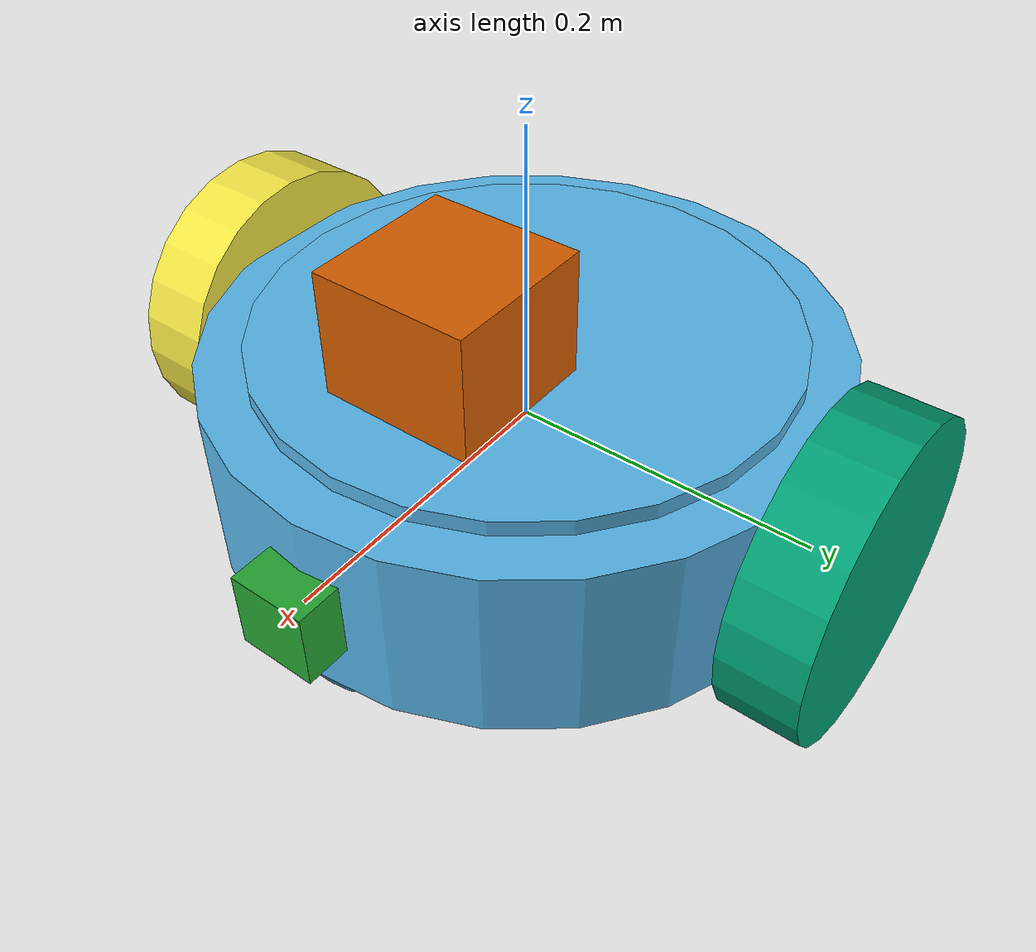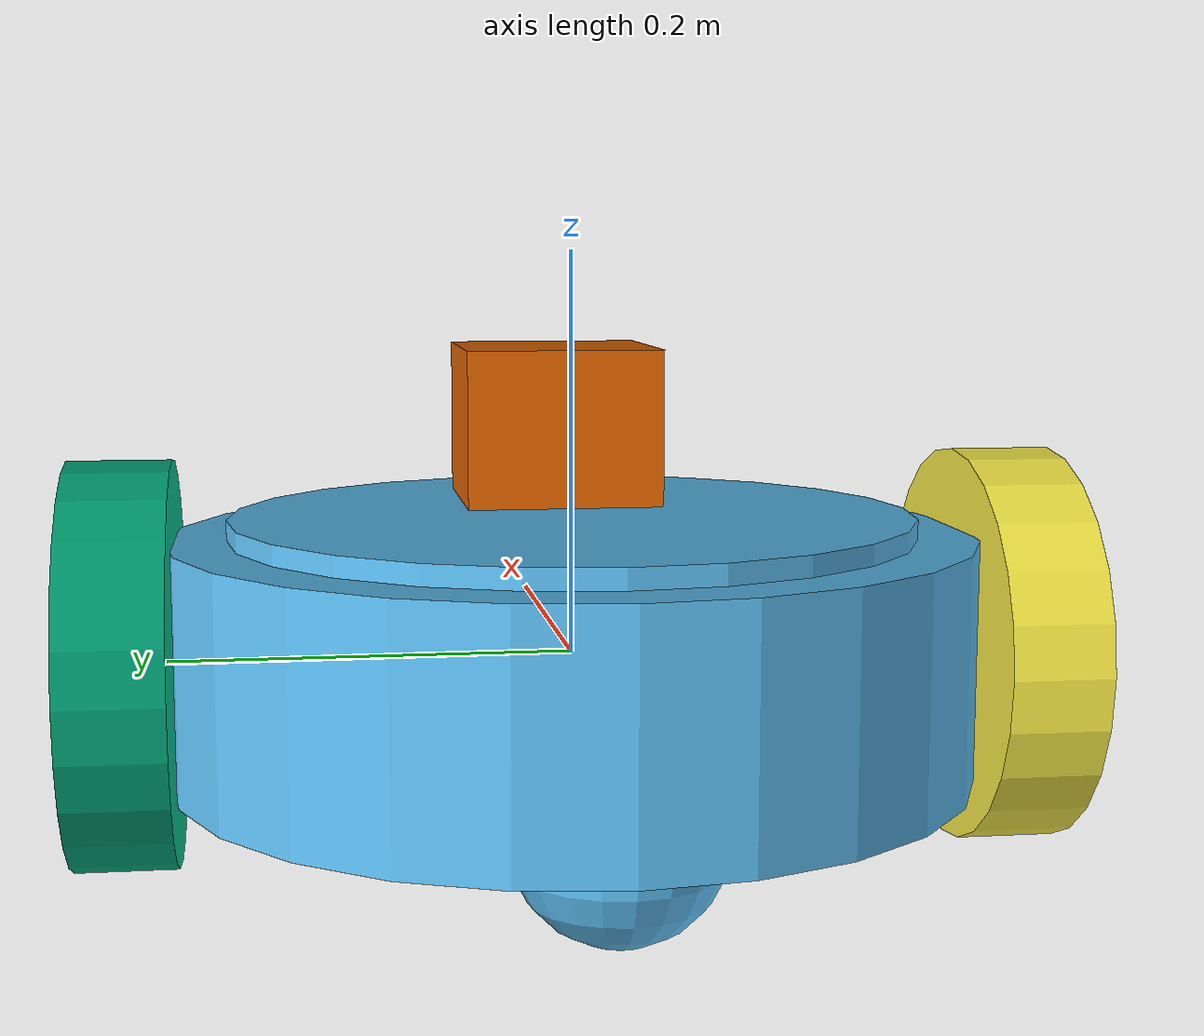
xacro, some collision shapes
<?xml version='1.0'?>

<robot name="udacity_bot" xmlns:xacro="http://www.ros.org/wiki/xacro">

 <xacro:include filename="$(find udacity_bot)/urdf/udacity_bot.gazebo" />

  <link name="robot_footprint"></link>

  <joint name="robot_footprint_joint" type="fixed">
    <origin xyz="0 0 0" rpy="0 0 0" />
    <parent link="robot_footprint"/>
    <child link="chassis" />
  </joint>

  <link name='chassis'>
    <pose>0 0 0.1 0 0 0</pose>

    <inertial>
      <mass value="15.0"/>
      <origin xyz="0.0 0 0" rpy=" 0 0 0"/>
      <inertia
          ixx="0.1" ixy="0" ixz="0"
          iyy="0.1" iyz="0"
          izz="0.1"
      />
    </inertial>

    <collision name='collision'>
      <origin xyz="0 0 0" rpy=" 0 0 0"/>
      <geometry>
        <cylinder radius="0.2" length="0.1"/>
      </geometry>
    </collision>

    <visual name='chassis_visual'>
      <origin xyz="0 0 0" rpy=" 0 0 0"/>
      <geometry>
        <cylinder radius="0.2" length="0.12"/>
      </geometry>
    </visual>

    <collision name='collision_y'>
      <origin xyz="0 0 0.06" rpy=" 0 0 0"/>
      <geometry>
        <cylinder radius="0.17" length="0.02"/>
      </geometry>
    </collision>

    <visual name='chassis_visual_y'>
      <origin xyz="0 0 0.06" rpy=" 0 0 0"/>
      <geometry>
        <cylinder radius="0.17" length="0.02"/>
      </geometry>
    </visual>

    <collision name='back_caster_collision'>
      <origin xyz="-0.15 0 -0.05" rpy=" 0 0 0"/>
      <geometry>
        <sphere radius="0.0499"/>
      </geometry>
    </collision>

    <visual name='back_caster_visual'>
      <origin xyz="-0.15 0 -0.05" rpy=" 0 0 0"/>
      <geometry>
        <sphere radius="0.05"/>
      </geometry>
    </visual>

    <collision name='front_caster_collision'>
      <origin xyz="0.15 0 -0.05" rpy=" 0 0 0"/>
      <geometry>
        <sphere radius="0.0499"/>
      </geometry>
    </collision>

    <visual name='front_caster_visual'>
      <origin xyz="0.15 0 -0.05" rpy=" 0 0 0"/>
      <geometry>
        <sphere radius="0.05"/>
      </geometry>
    </visual>

  </link>

  <!-- left_wheel -->

  <link name="left_wheel">

    <visual name='left_wheel_visual'>
      <origin xyz="0 0 0" rpy=" 0 1.5707 1.5707"/>
      <geometry>
        <cylinder radius="0.1" length="0.05"/>
      </geometry>
    </visual>

   <collision name='left_wheel_collision'>
      <origin xyz="0 0 0" rpy=" 0 1.5707 1.5707"/>
      <geometry>
        <cylinder radius="0.1" length="0.05"/>
      </geometry>
   </collision>

    <inertial>
      <mass value="5.0"/>
      <origin xyz="0.0 0 0" rpy=" 0 1.5707 1.5707"/>
      <inertia
          ixx="0.1" ixy="0" ixz="0"
          iyy="0.1" iyz="0"
          izz="0.1"
      />
    </inertial>

  </link>

  <joint type="continuous" name="left_wheel_hinge">
      <origin xyz="0 0.22 0" rpy="0 0 0"/>
      <child link="left_wheel"/>
      <parent link="chassis"/>
      <axis xyz="0 1 0" rpy="0 0 0"/>
      <limit effort="10000" velocity="1000"/>
      <joint_properties damping="1.0" friction="1.0"/>
  </joint>

  <!-- right_wheel -->

  <link name="right_wheel">

    <visual name='right_wheel_visual'>
      <origin xyz="0 0 0" rpy=" 0 1.5707 1.5707"/>
      <geometry>
        <cylinder radius="0.1" length="0.05"/>
      </geometry>
    </visual>

   <collision name='right_wheel_collision'>
      <origin xyz="0 0 0" rpy=" 0 1.5707 1.5707"/>
      <geometry>
        <cylinder radius="0.1" length="0.05"/>
      </geometry>
   </collision>

    <inertial>
      <mass value="5.0"/>
      <origin xyz="0.0 0 0" rpy=" 0 1.5707 1.5707"/>
      <inertia
          ixx="0.1" ixy="0" ixz="0"
          iyy="0.1" iyz="0"
          izz="0.1"
      />
    </inertial>

  </link>

  <joint type="continuous" name="right_wheel_hinge">
      <origin xyz="0 -0.22 0" rpy="0 0 0"/>
      <child link="right_wheel"/>
      <parent link="chassis"/>
      <axis xyz="0 1 0" rpy="0 0 0"/>
      <limit effort="10000" velocity="1000"/>
      <joint_properties damping="1.0" friction="1.0"/>
  </joint>

  <!-- camera  -->

  <link name="camera">

  	<visual name='camera_visual'>
      <origin xyz="0 0 0" rpy=" 0 0 0"/>
      <geometry>
        <box size="0.05 0.05 0.05"/>
      </geometry>
    </visual>

    <collision name='camera_collision'>
      <origin xyz="0 0 0" rpy=" 0 0 0"/>
      <geometry>
        <box size="0.05 0.05 0.05"/>
      </geometry>
    </collision>

    <inertial>
      <mass value="0.1"/>
      <origin xyz="0.0 0 0" rpy=" 0 0 0"/>
      <inertia
          ixx="1e-6" ixy="0" ixz="0"
          iyy="1e-6" iyz="0"
          izz="1e-6"
      />
    </inertial>

  </link>

  <joint type="continuous" name="camera_joint">
      <origin xyz="0.2 0 0" rpy="0 0 0"/>
      <child link="camera"/>
      <parent link="chassis"/>
      <axis xyz="0 1 0" rpy="0 0 0"/>
  </joint>

    <!-- rangefinder-sensor -->

  <link name="hokuyo">

  	<visual name='hokuyo_visual'>
      <origin xyz="0 0 0" rpy=" 0 0 0"/>
      <geometry>
        <mesh filename="package://udacity_bot/meshes/hokuyo.dae"/>
      </geometry>
    </visual>

    <collision name='hokuyo_collision'>
      <origin xyz="0 0 0" rpy=" 0 0 0"/>
      <geometry>
        <box size="0.1 0.1 0.1"/>
      </geometry>
    </collision>

    <inertial>
      <mass value="0.1"/>
      <origin xyz="0.0 0 0" rpy=" 0 0 0"/>
      <inertia
          ixx="1e-6" ixy="0" ixz="0"
          iyy="1e-6" iyz="0"
          izz="1e-6"
      />
    </inertial>

  </link>

  <joint type="continuous" name="hokuyo_joint">
      <origin xyz="0.07 0 0.1" rpy="0 0 0"/>
      <child link="hokuyo"/>
      <parent link="chassis"/>
      <axis xyz="1 0 0" rpy="0 0 0"/>
  </joint>

</robot>
